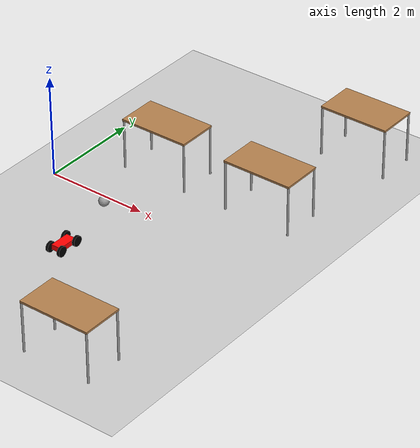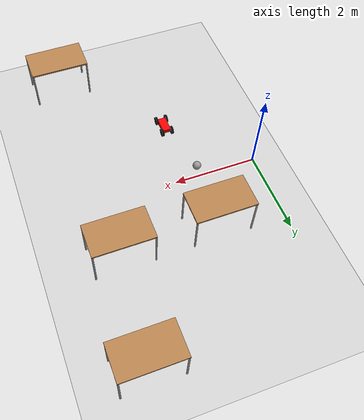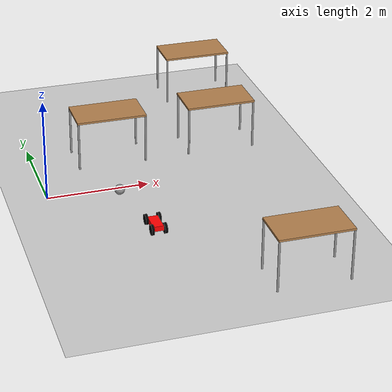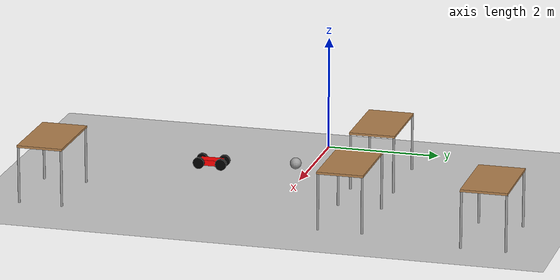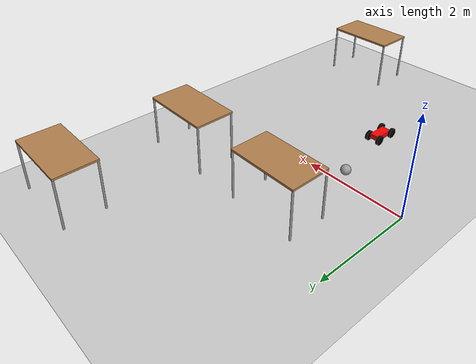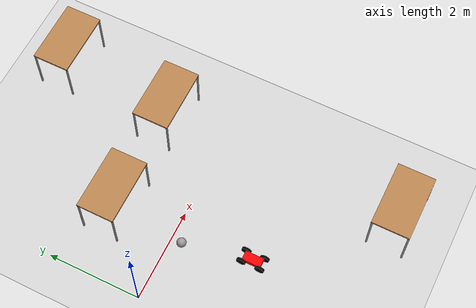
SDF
<sdf version="1.6">
 <world name="default">
  <model name="ground_plane">
   <static>1</static>
   <link name="link">
    <collision name="collision">
     <geometry><plane><normal>0 0 1</normal><size>100 100</size></plane></geometry>
     <surface><friction><ode><mu>100</mu><mu2>50</mu2></ode></friction></surface>
    </collision>
    <visual name="visual">
     <cast_shadows>0</cast_shadows>
     <geometry><plane><normal>0 0 1</normal><size>100 100</size></plane></geometry>
     <material>
      <script><uri>file://media/materials/scripts/gazebo.material</uri><name>Gazebo/Grey</name></script>
     </material>
    </visual>
   </link>
  </model>
  <model name="my_robot">
   <link name="link_0">
    <inertial>
     <mass>1</mass>
     <inertia>
      <ixx>0.166667</ixx>
      <ixy>0</ixy>
      <ixz>0</ixz>
      <iyy>0.166667</iyy>
      <iyz>0</iyz>
      <izz>0.166667</izz>
     </inertia>
    </inertial>
    <visual name="visual">
     <geometry><box><size>0.4 0.2 0.1</size></box></geometry>
     <material>
      <ambient>1 0 0 1</ambient>
      <diffuse>1 0 0 1</diffuse>
      <specular>0.1 0.1 0.1 1</specular>
      <emissive>0 0 0 0</emissive>
     </material>
    </visual>
    <collision name="collision">
     <geometry><box><size>0.4 0.2 0.1</size></box></geometry>
     <surface>
      <friction>
       <ode><mu>1</mu><mu2>1</mu2><fdir1>0 0 0</fdir1><slip1>0</slip1><slip2>0</slip2></ode>
       <torsional>
        <coefficient>1</coefficient>
        <patch_radius>0</patch_radius>
        <surface_radius>0</surface_radius>
        <use_patch_radius>1</use_patch_radius>
        <ode><slip>0</slip></ode>
       </torsional>
      </friction>
      <bounce><restitution_coefficient>0</restitution_coefficient><threshold>1e+06</threshold></bounce>
      <contact>
       <collide_without_contact>0</collide_without_contact>
       <collide_without_contact_bitmask>1</collide_without_contact_bitmask>
       <collide_bitmask>1</collide_bitmask>
       <ode>
        <soft_cfm>0</soft_cfm>
        <soft_erp>0.2</soft_erp>
        <kp>1e+13</kp>
        <kd>1</kd>
        <max_vel>0.01</max_vel>
        <min_depth>0</min_depth>
       </ode>
       <bullet>
        <split_impulse>1</split_impulse>
        <split_impulse_penetration_threshold>-0.01</split_impulse_penetration_threshold>
        <soft_cfm>0</soft_cfm>
        <soft_erp>0.2</soft_erp>
        <kp>1e+13</kp>
        <kd>1</kd>
       </bullet>
      </contact>
     </surface>
    </collision>
   </link>
   <link name="link_2">
    <pose>-0.2 0.125 0 1.5708 -0 0</pose>
    <inertial>
     <mass>1</mass>
     <inertia><ixx>0.145833</ixx><ixy>0</ixy><ixz>0</ixz><iyy>0.145833</iyy><iyz>0</iyz><izz>0.125</izz></inertia>
    </inertial>
    <visual name="visual">
     <geometry><cylinder><radius>0.1</radius><length>0.05</length></cylinder></geometry>
     <material>
      <ambient>0 0 0 0</ambient>
      <diffuse>0 0 0 0</diffuse>
      <specular>0.1 0.1 0.1 1</specular>
      <emissive>0 0 0 0</emissive>
     </material>
    </visual>
    <collision name="collision">
     <geometry><cylinder><radius>0.1</radius><length>0.05</length></cylinder></geometry>
     <surface>
      <friction>
       <ode><mu>1</mu><mu2>1</mu2><fdir1>0 0 0</fdir1><slip1>0</slip1><slip2>0</slip2></ode>
       <torsional>
        <coefficient>1</coefficient>
        <patch_radius>0</patch_radius>
        <surface_radius>0</surface_radius>
        <use_patch_radius>1</use_patch_radius>
        <ode><slip>0</slip></ode>
       </torsional>
      </friction>
      <bounce><restitution_coefficient>0</restitution_coefficient><threshold>1e+06</threshold></bounce>
      <contact>
       <collide_without_contact>0</collide_without_contact>
       <collide_without_contact_bitmask>1</collide_without_contact_bitmask>
       <collide_bitmask>1</collide_bitmask>
       <ode>
        <soft_cfm>0</soft_cfm>
        <soft_erp>0.2</soft_erp>
        <kp>1e+13</kp>
        <kd>1</kd>
        <max_vel>0.01</max_vel>
        <min_depth>0</min_depth>
       </ode>
       <bullet>
        <split_impulse>1</split_impulse>
        <split_impulse_penetration_threshold>-0.01</split_impulse_penetration_threshold>
        <soft_cfm>0</soft_cfm>
        <soft_erp>0.2</soft_erp>
        <kp>1e+13</kp>
        <kd>1</kd>
       </bullet>
      </contact>
     </surface>
    </collision>
   </link>
   <link name="link_2_clone">
    <pose>0.2 0.125 0 1.5708 -0 0</pose>
    <inertial>
     <mass>1</mass>
     <inertia><ixx>0.145833</ixx><ixy>0</ixy><ixz>0</ixz><iyy>0.145833</iyy><iyz>0</iyz><izz>0.125</izz></inertia>
    </inertial>
    <visual name="visual">
     <geometry><cylinder><radius>0.1</radius><length>0.05</length></cylinder></geometry>
     <material>
      <ambient>0 0 0 0</ambient>
      <diffuse>0 0 0 0</diffuse>
      <specular>0.1 0.1 0.1 1</specular>
      <emissive>0 0 0 0</emissive>
     </material>
    </visual>
    <collision name="collision">
     <geometry><cylinder><radius>0.1</radius><length>0.05</length></cylinder></geometry>
     <surface>
      <friction>
       <ode><mu>1</mu><mu2>1</mu2><fdir1>0 0 0</fdir1><slip1>0</slip1><slip2>0</slip2></ode>
       <torsional>
        <coefficient>1</coefficient>
        <patch_radius>0</patch_radius>
        <surface_radius>0</surface_radius>
        <use_patch_radius>1</use_patch_radius>
        <ode><slip>0</slip></ode>
       </torsional>
      </friction>
      <bounce><restitution_coefficient>0</restitution_coefficient><threshold>1e+06</threshold></bounce>
      <contact>
       <collide_without_contact>0</collide_without_contact>
       <collide_without_contact_bitmask>1</collide_without_contact_bitmask>
       <collide_bitmask>1</collide_bitmask>
       <ode>
        <soft_cfm>0</soft_cfm>
        <soft_erp>0.2</soft_erp>
        <kp>1e+13</kp>
        <kd>1</kd>
        <max_vel>0.01</max_vel>
        <min_depth>0</min_depth>
       </ode>
       <bullet>
        <split_impulse>1</split_impulse>
        <split_impulse_penetration_threshold>-0.01</split_impulse_penetration_threshold>
        <soft_cfm>0</soft_cfm>
        <soft_erp>0.2</soft_erp>
        <kp>1e+13</kp>
        <kd>1</kd>
       </bullet>
      </contact>
     </surface>
    </collision>
   </link>
   <link name="link_2_clone_0">
    <pose>0.2 -0.125 0 1.5708 -0 0</pose>
    <inertial>
     <mass>1</mass>
     <inertia><ixx>0.145833</ixx><ixy>0</ixy><ixz>0</ixz><iyy>0.145833</iyy><iyz>0</iyz><izz>0.125</izz></inertia>
    </inertial>
    <visual name="visual">
     <geometry><cylinder><radius>0.1</radius><length>0.05</length></cylinder></geometry>
     <material>
      <ambient>0 0 0 0</ambient>
      <diffuse>0 0 0 0</diffuse>
      <specular>0.1 0.1 0.1 1</specular>
      <emissive>0 0 0 0</emissive>
     </material>
    </visual>
    <collision name="collision">
     <geometry><cylinder><radius>0.1</radius><length>0.05</length></cylinder></geometry>
     <surface>
      <friction>
       <ode><mu>1</mu><mu2>1</mu2><fdir1>0 0 0</fdir1><slip1>0</slip1><slip2>0</slip2></ode>
       <torsional>
        <coefficient>1</coefficient>
        <patch_radius>0</patch_radius>
        <surface_radius>0</surface_radius>
        <use_patch_radius>1</use_patch_radius>
        <ode><slip>0</slip></ode>
       </torsional>
      </friction>
      <bounce><restitution_coefficient>0</restitution_coefficient><threshold>1e+06</threshold></bounce>
      <contact>
       <collide_without_contact>0</collide_without_contact>
       <collide_without_contact_bitmask>1</collide_without_contact_bitmask>
       <collide_bitmask>1</collide_bitmask>
       <ode>
        <soft_cfm>0</soft_cfm>
        <soft_erp>0.2</soft_erp>
        <kp>1e+13</kp>
        <kd>1</kd>
        <max_vel>0.01</max_vel>
        <min_depth>0</min_depth>
       </ode>
       <bullet>
        <split_impulse>1</split_impulse>
        <split_impulse_penetration_threshold>-0.01</split_impulse_penetration_threshold>
        <soft_cfm>0</soft_cfm>
        <soft_erp>0.2</soft_erp>
        <kp>1e+13</kp>
        <kd>1</kd>
       </bullet>
      </contact>
     </surface>
    </collision>
   </link>
   <link name="link_2_clone_0_clone">
    <pose>-0.2 -0.125 0 1.5708 -0 0</pose>
    <inertial>
     <mass>1</mass>
     <inertia><ixx>0.145833</ixx><ixy>0</ixy><ixz>0</ixz><iyy>0.145833</iyy><iyz>0</iyz><izz>0.125</izz></inertia>
    </inertial>
    <visual name="visual">
     <geometry><cylinder><radius>0.1</radius><length>0.05</length></cylinder></geometry>
     <material>
      <ambient>0 0 0 0</ambient>
      <diffuse>0 0 0 0</diffuse>
      <specular>0.1 0.1 0.1 1</specular>
      <emissive>0 0 0 0</emissive>
     </material>
    </visual>
    <collision name="collision">
     <geometry><cylinder><radius>0.1</radius><length>0.05</length></cylinder></geometry>
     <surface>
      <friction>
       <ode><mu>1</mu><mu2>1</mu2><fdir1>0 0 0</fdir1><slip1>0</slip1><slip2>0</slip2></ode>
       <torsional>
        <coefficient>1</coefficient>
        <patch_radius>0</patch_radius>
        <surface_radius>0</surface_radius>
        <use_patch_radius>1</use_patch_radius>
        <ode><slip>0</slip></ode>
       </torsional>
      </friction>
      <bounce><restitution_coefficient>0</restitution_coefficient><threshold>1e+06</threshold></bounce>
      <contact>
       <collide_without_contact>0</collide_without_contact>
       <collide_without_contact_bitmask>1</collide_without_contact_bitmask>
       <collide_bitmask>1</collide_bitmask>
       <ode>
        <soft_cfm>0</soft_cfm>
        <soft_erp>0.2</soft_erp>
        <kp>1e+13</kp>
        <kd>1</kd>
        <max_vel>0.01</max_vel>
        <min_depth>0</min_depth>
       </ode>
       <bullet>
        <split_impulse>1</split_impulse>
        <split_impulse_penetration_threshold>-0.01</split_impulse_penetration_threshold>
        <soft_cfm>0</soft_cfm>
        <soft_erp>0.2</soft_erp>
        <kp>1e+13</kp>
        <kd>1</kd>
       </bullet>
      </contact>
     </surface>
    </collision>
   </link>
   <joint name="link_0_JOINT_10" type="revolute">
    <parent>link_0</parent>
    <child>link_2_clone_0_clone</child>
    <axis>
     <xyz>0 0 1</xyz>
     <use_parent_model_frame>0</use_parent_model_frame>
     <limit>
      <lower>-1.79769e+308</lower>
      <upper>1.79769e+308</upper>
      <effort>-1</effort>
      <velocity>-1</velocity>
     </limit>
     <dynamics>
      <spring_reference>0</spring_reference>
      <spring_stiffness>0</spring_stiffness>
      <damping>0</damping>
     </dynamics>
    </axis>
    <physics>
     <ode><limit><cfm>0</cfm><erp>0.2</erp></limit><suspension><cfm>0</cfm><erp>0.2</erp></suspension></ode>
    </physics>
   </joint>
   <joint name="link_0_JOINT_3" type="revolute">
    <parent>link_0</parent>
    <child>link_2_clone</child>
    <axis>
     <xyz>0 0 1</xyz>
     <use_parent_model_frame>0</use_parent_model_frame>
     <limit>
      <lower>-1.79769e+308</lower>
      <upper>1.79769e+308</upper>
      <effort>-1</effort>
      <velocity>-1</velocity>
     </limit>
     <dynamics>
      <spring_reference>0</spring_reference>
      <spring_stiffness>0</spring_stiffness>
      <damping>0</damping>
     </dynamics>
    </axis>
    <physics>
     <ode><limit><cfm>0</cfm><erp>0.2</erp></limit><suspension><cfm>0</cfm><erp>0.2</erp></suspension></ode>
    </physics>
   </joint>
   <joint name="link_0_JOINT_6" type="revolute">
    <parent>link_0</parent>
    <child>link_2</child>
    <axis>
     <xyz>0 0 1</xyz>
     <use_parent_model_frame>0</use_parent_model_frame>
     <limit>
      <lower>-1.79769e+308</lower>
      <upper>1.79769e+308</upper>
      <effort>-1</effort>
      <velocity>-1</velocity>
     </limit>
     <dynamics>
      <spring_reference>0</spring_reference>
      <spring_stiffness>0</spring_stiffness>
      <damping>0</damping>
     </dynamics>
    </axis>
    <physics>
     <ode><limit><cfm>0</cfm><erp>0.2</erp></limit><suspension><cfm>0</cfm><erp>0.2</erp></suspension></ode>
    </physics>
   </joint>
   <joint name="link_0_JOINT_9" type="revolute">
    <parent>link_0</parent>
    <child>link_2_clone_0</child>
    <axis>
     <xyz>0 0 1</xyz>
     <use_parent_model_frame>0</use_parent_model_frame>
     <limit>
      <lower>-1.79769e+308</lower>
      <upper>1.79769e+308</upper>
      <effort>-1</effort>
      <velocity>-1</velocity>
     </limit>
     <dynamics>
      <spring_reference>0</spring_reference>
      <spring_stiffness>0</spring_stiffness>
      <damping>0</damping>
     </dynamics>
    </axis>
    <physics>
     <ode><limit><cfm>0</cfm><erp>0.2</erp></limit><suspension><cfm>0</cfm><erp>0.2</erp></suspension></ode>
    </physics>
   </joint>
   <static>0</static>
   <pose>1.67146 -1.67753 0.1 -2e-06 -0 -1.56512</pose>
  </model>
  <model name="table_0">
   <static>0</static>
   <link name="link">
    <collision name="surface">
     <pose>0 0 1 0 -0 0</pose>
     <geometry><box><size>1.5 0.8 0.03</size></box></geometry>
     <surface><friction><ode><mu>0.6</mu><mu2>0.6</mu2></ode></friction></surface>
    </collision>
    <visual name="visual1">
     <pose>0 0 1 0 -0 0</pose>
     <geometry><box><size>1.4 0.8 0.04</size></box></geometry>
     <material>
      <script><uri>file://media/materials/scripts/gazebo.material</uri><name>Gazebo/Wood</name></script>
     </material>
    </visual>
    <collision name="front_left_leg">
     <pose>0.68 0.38 0.5 0 -0 0</pose>
     <geometry><cylinder><radius>0.02</radius><length>1</length></cylinder></geometry>
    </collision>
    <visual name="front_left_leg">
     <pose>0.68 0.38 0.5 0 -0 0</pose>
     <geometry><cylinder><radius>0.02</radius><length>1</length></cylinder></geometry>
     <material>
      <script><uri>file://media/materials/scripts/gazebo.material</uri><name>Gazebo/Grey</name></script>
     </material>
    </visual>
    <collision name="front_right_leg">
     <pose>0.68 -0.38 0.5 0 -0 0</pose>
     <geometry><cylinder><radius>0.02</radius><length>1</length></cylinder></geometry>
    </collision>
    <visual name="front_right_leg">
     <pose>0.68 -0.38 0.5 0 -0 0</pose>
     <geometry><cylinder><radius>0.02</radius><length>1</length></cylinder></geometry>
     <material>
      <script><uri>file://media/materials/scripts/gazebo.material</uri><name>Gazebo/Grey</name></script>
     </material>
    </visual>
    <collision name="back_right_leg">
     <pose>-0.68 -0.38 0.5 0 -0 0</pose>
     <geometry><cylinder><radius>0.02</radius><length>1</length></cylinder></geometry>
    </collision>
    <visual name="back_right_leg">
     <pose>-0.68 -0.38 0.5 0 -0 0</pose>
     <geometry><cylinder><radius>0.02</radius><length>1</length></cylinder></geometry>
     <material>
      <script><uri>file://media/materials/scripts/gazebo.material</uri><name>Gazebo/Grey</name></script>
     </material>
    </visual>
    <collision name="back_left_leg">
     <pose>-0.68 0.38 0.5 0 -0 0</pose>
     <geometry><cylinder><radius>0.02</radius><length>1</length></cylinder></geometry>
    </collision>
    <visual name="back_left_leg">
     <pose>-0.68 0.38 0.5 0 -0 0</pose>
     <geometry><cylinder><radius>0.02</radius><length>1</length></cylinder></geometry>
     <material>
      <script><uri>file://media/materials/scripts/gazebo.material</uri><name>Gazebo/Grey</name></script>
     </material>
    </visual>
    <inertial>
     <inertia><ixx>1</ixx><ixy>0</ixy><ixz>0</ixz><iyy>1</iyy><iyz>0</iyz><izz>1</izz></inertia>
     <mass>1</mass>
    </inertial>
   </link>
   <pose>1.54532 1.34293 -1e-06 0 1e-06 0</pose>
  </model>
  <model name="table_clone">
   <static>0</static>
   <link name="link">
    <collision name="surface">
     <pose>0 0 1 0 -0 0</pose>
     <geometry><box><size>1.5 0.8 0.03</size></box></geometry>
     <surface><friction><ode><mu>0.6</mu><mu2>0.6</mu2></ode></friction></surface>
    </collision>
    <visual name="visual1">
     <pose>0 0 1 0 -0 0</pose>
     <geometry><box><size>1.4 0.8 0.04</size></box></geometry>
     <material>
      <script><uri>file://media/materials/scripts/gazebo.material</uri><name>Gazebo/Wood</name></script>
     </material>
    </visual>
    <collision name="front_left_leg">
     <pose>0.68 0.38 0.5 0 -0 0</pose>
     <geometry><cylinder><radius>0.02</radius><length>1</length></cylinder></geometry>
    </collision>
    <visual name="front_left_leg">
     <pose>0.68 0.38 0.5 0 -0 0</pose>
     <geometry><cylinder><radius>0.02</radius><length>1</length></cylinder></geometry>
     <material>
      <script><uri>file://media/materials/scripts/gazebo.material</uri><name>Gazebo/Grey</name></script>
     </material>
    </visual>
    <collision name="front_right_leg">
     <pose>0.68 -0.38 0.5 0 -0 0</pose>
     <geometry><cylinder><radius>0.02</radius><length>1</length></cylinder></geometry>
    </collision>
    <visual name="front_right_leg">
     <pose>0.68 -0.38 0.5 0 -0 0</pose>
     <geometry><cylinder><radius>0.02</radius><length>1</length></cylinder></geometry>
     <material>
      <script><uri>file://media/materials/scripts/gazebo.material</uri><name>Gazebo/Grey</name></script>
     </material>
    </visual>
    <collision name="back_right_leg">
     <pose>-0.68 -0.38 0.5 0 -0 0</pose>
     <geometry><cylinder><radius>0.02</radius><length>1</length></cylinder></geometry>
    </collision>
    <visual name="back_right_leg">
     <pose>-0.68 -0.38 0.5 0 -0 0</pose>
     <geometry><cylinder><radius>0.02</radius><length>1</length></cylinder></geometry>
     <material>
      <script><uri>file://media/materials/scripts/gazebo.material</uri><name>Gazebo/Grey</name></script>
     </material>
    </visual>
    <collision name="back_left_leg">
     <pose>-0.68 0.38 0.5 0 -0 0</pose>
     <geometry><cylinder><radius>0.02</radius><length>1</length></cylinder></geometry>
    </collision>
    <visual name="back_left_leg">
     <pose>-0.68 0.38 0.5 0 -0 0</pose>
     <geometry><cylinder><radius>0.02</radius><length>1</length></cylinder></geometry>
     <material>
      <script><uri>file://media/materials/scripts/gazebo.material</uri><name>Gazebo/Grey</name></script>
     </material>
    </visual>
    <inertial>
     <inertia><ixx>1</ixx><ixy>0</ixy><ixz>0</ixz><iyy>1</iyy><iyz>0</iyz><izz>1</izz></inertia>
     <mass>1</mass>
    </inertial>
   </link>
   <pose>3.8167 1.36006 -9e-06 0 -1e-06 0</pose>
  </model>
  <model name="table_0_clone">
   <static>0</static>
   <link name="link">
    <collision name="surface">
     <pose>0 0 1 0 -0 0</pose>
     <geometry><box><size>1.5 0.8 0.03</size></box></geometry>
     <surface><friction><ode><mu>0.6</mu><mu2>0.6</mu2></ode></friction></surface>
    </collision>
    <visual name="visual1">
     <pose>0 0 1 0 -0 0</pose>
     <geometry><box><size>1.4 0.8 0.04</size></box></geometry>
     <material>
      <script><uri>file://media/materials/scripts/gazebo.material</uri><name>Gazebo/Wood</name></script>
     </material>
    </visual>
    <collision name="front_left_leg">
     <pose>0.68 0.38 0.5 0 -0 0</pose>
     <geometry><cylinder><radius>0.02</radius><length>1</length></cylinder></geometry>
    </collision>
    <visual name="front_left_leg">
     <pose>0.68 0.38 0.5 0 -0 0</pose>
     <geometry><cylinder><radius>0.02</radius><length>1</length></cylinder></geometry>
     <material>
      <script><uri>file://media/materials/scripts/gazebo.material</uri><name>Gazebo/Grey</name></script>
     </material>
    </visual>
    <collision name="front_right_leg">
     <pose>0.68 -0.38 0.5 0 -0 0</pose>
     <geometry><cylinder><radius>0.02</radius><length>1</length></cylinder></geometry>
    </collision>
    <visual name="front_right_leg">
     <pose>0.68 -0.38 0.5 0 -0 0</pose>
     <geometry><cylinder><radius>0.02</radius><length>1</length></cylinder></geometry>
     <material>
      <script><uri>file://media/materials/scripts/gazebo.material</uri><name>Gazebo/Grey</name></script>
     </material>
    </visual>
    <collision name="back_right_leg">
     <pose>-0.68 -0.38 0.5 0 -0 0</pose>
     <geometry><cylinder><radius>0.02</radius><length>1</length></cylinder></geometry>
    </collision>
    <visual name="back_right_leg">
     <pose>-0.68 -0.38 0.5 0 -0 0</pose>
     <geometry><cylinder><radius>0.02</radius><length>1</length></cylinder></geometry>
     <material>
      <script><uri>file://media/materials/scripts/gazebo.material</uri><name>Gazebo/Grey</name></script>
     </material>
    </visual>
    <collision name="back_left_leg">
     <pose>-0.68 0.38 0.5 0 -0 0</pose>
     <geometry><cylinder><radius>0.02</radius><length>1</length></cylinder></geometry>
    </collision>
    <visual name="back_left_leg">
     <pose>-0.68 0.38 0.5 0 -0 0</pose>
     <geometry><cylinder><radius>0.02</radius><length>1</length></cylinder></geometry>
     <material>
      <script><uri>file://media/materials/scripts/gazebo.material</uri><name>Gazebo/Grey</name></script>
     </material>
    </visual>
    <inertial>
     <inertia><ixx>1</ixx><ixy>0</ixy><ixz>0</ixz><iyy>1</iyy><iyz>0</iyz><izz>1</izz></inertia>
     <mass>1</mass>
    </inertial>
   </link>
   <pose>3.75091 -3.9073 -1e-06 0 1e-06 0</pose>
  </model>
  <model name="table_clone_0">
   <static>0</static>
   <link name="link">
    <collision name="surface">
     <pose>0 0 1 0 -0 0</pose>
     <geometry><box><size>1.5 0.8 0.03</size></box></geometry>
     <surface><friction><ode><mu>0.6</mu><mu2>0.6</mu2></ode></friction></surface>
    </collision>
    <visual name="visual1">
     <pose>0 0 1 0 -0 0</pose>
     <geometry><box><size>1.4 0.8 0.04</size></box></geometry>
     <material>
      <script><uri>file://media/materials/scripts/gazebo.material</uri><name>Gazebo/Wood</name></script>
     </material>
    </visual>
    <collision name="front_left_leg">
     <pose>0.68 0.38 0.5 0 -0 0</pose>
     <geometry><cylinder><radius>0.02</radius><length>1</length></cylinder></geometry>
    </collision>
    <visual name="front_left_leg">
     <pose>0.68 0.38 0.5 0 -0 0</pose>
     <geometry><cylinder><radius>0.02</radius><length>1</length></cylinder></geometry>
     <material>
      <script><uri>file://media/materials/scripts/gazebo.material</uri><name>Gazebo/Grey</name></script>
     </material>
    </visual>
    <collision name="front_right_leg">
     <pose>0.68 -0.38 0.5 0 -0 0</pose>
     <geometry><cylinder><radius>0.02</radius><length>1</length></cylinder></geometry>
    </collision>
    <visual name="front_right_leg">
     <pose>0.68 -0.38 0.5 0 -0 0</pose>
     <geometry><cylinder><radius>0.02</radius><length>1</length></cylinder></geometry>
     <material>
      <script><uri>file://media/materials/scripts/gazebo.material</uri><name>Gazebo/Grey</name></script>
     </material>
    </visual>
    <collision name="back_right_leg">
     <pose>-0.68 -0.38 0.5 0 -0 0</pose>
     <geometry><cylinder><radius>0.02</radius><length>1</length></cylinder></geometry>
    </collision>
    <visual name="back_right_leg">
     <pose>-0.68 -0.38 0.5 0 -0 0</pose>
     <geometry><cylinder><radius>0.02</radius><length>1</length></cylinder></geometry>
     <material>
      <script><uri>file://media/materials/scripts/gazebo.material</uri><name>Gazebo/Grey</name></script>
     </material>
    </visual>
    <collision name="back_left_leg">
     <pose>-0.68 0.38 0.5 0 -0 0</pose>
     <geometry><cylinder><radius>0.02</radius><length>1</length></cylinder></geometry>
    </collision>
    <visual name="back_left_leg">
     <pose>-0.68 0.38 0.5 0 -0 0</pose>
     <geometry><cylinder><radius>0.02</radius><length>1</length></cylinder></geometry>
     <material>
      <script><uri>file://media/materials/scripts/gazebo.material</uri><name>Gazebo/Grey</name></script>
     </material>
    </visual>
    <inertial>
     <inertia><ixx>1</ixx><ixy>0</ixy><ixz>0</ixz><iyy>1</iyy><iyz>0</iyz><izz>1</izz></inertia>
     <mass>1</mass>
    </inertial>
   </link>
   <pose>4.10382 3.8688 -1e-06 0 1e-06 0</pose>
  </model>
  <model name="my_ball">
   <link name="link_0">
    <inertial>
     <mass>1</mass>
     <inertia><ixx>0.1</ixx><ixy>0</ixy><ixz>0</ixz><iyy>0.1</iyy><iyz>0</iyz><izz>0.1</izz></inertia>
    </inertial>
    <visual name="visual">
     <geometry><sphere><radius>0.1</radius></sphere></geometry>
     <material>
      <lighting>1</lighting>
      <script><uri>file://media/materials/scripts/gazebo.material</uri><name>Gazebo/Grey</name></script>
      <ambient>1 1 1 1</ambient>
      <diffuse>1 1 1 1</diffuse>
      <specular>1 1 1 1</specular>
      <emissive>1 1 1 1</emissive>
      <shader type="vertex"><normal_map>__default__</normal_map></shader>
     </material>
    </visual>
    <collision name="collision">
     <geometry><sphere><radius>0.1</radius></sphere></geometry>
     <surface>
      <friction>
       <ode><mu>1</mu><mu2>1</mu2><fdir1>0 0 0</fdir1><slip1>0</slip1><slip2>0</slip2></ode>
       <torsional>
        <coefficient>1</coefficient>
        <patch_radius>0</patch_radius>
        <surface_radius>0</surface_radius>
        <use_patch_radius>1</use_patch_radius>
        <ode><slip>0</slip></ode>
       </torsional>
      </friction>
      <bounce><restitution_coefficient>0</restitution_coefficient><threshold>1e+06</threshold></bounce>
      <contact>
       <collide_without_contact>0</collide_without_contact>
       <collide_without_contact_bitmask>1</collide_without_contact_bitmask>
       <collide_bitmask>1</collide_bitmask>
       <ode>
        <soft_cfm>0</soft_cfm>
        <soft_erp>0.2</soft_erp>
        <kp>1e+13</kp>
        <kd>1</kd>
        <max_vel>0.01</max_vel>
        <min_depth>0</min_depth>
       </ode>
       <bullet>
        <split_impulse>1</split_impulse>
        <split_impulse_penetration_threshold>-0.01</split_impulse_penetration_threshold>
        <soft_cfm>0</soft_cfm>
        <soft_erp>0.2</soft_erp>
        <kp>1e+13</kp>
        <kd>1</kd>
       </bullet>
      </contact>
     </surface>
    </collision>
   </link>
   <static>0</static>
   <pose>1.3706 -0.238003 0.1 0 -0 0</pose>
  </model>
 </world>
</sdf>
